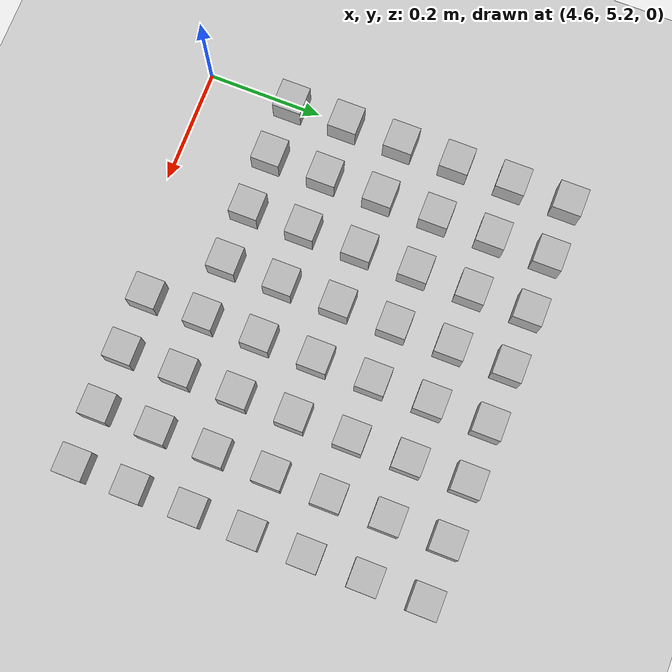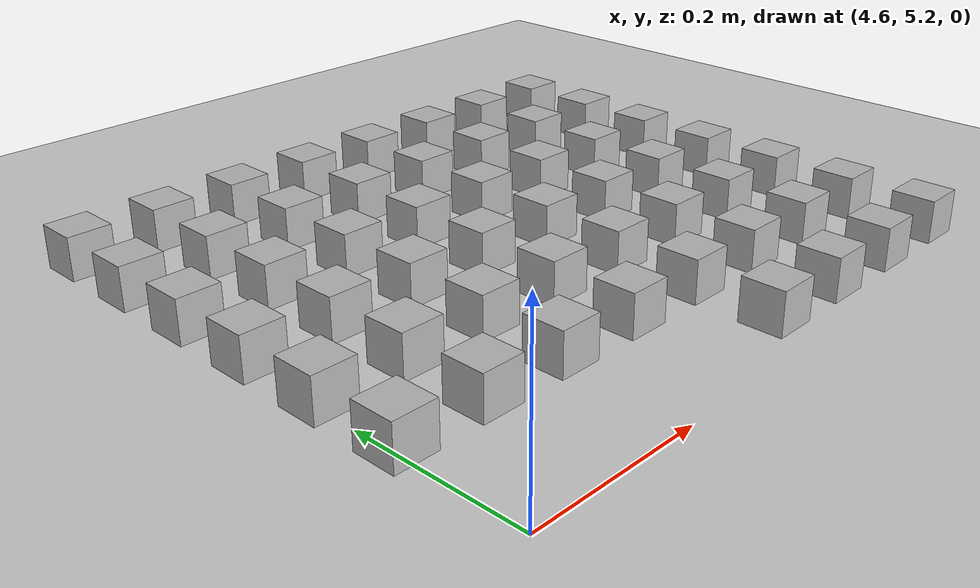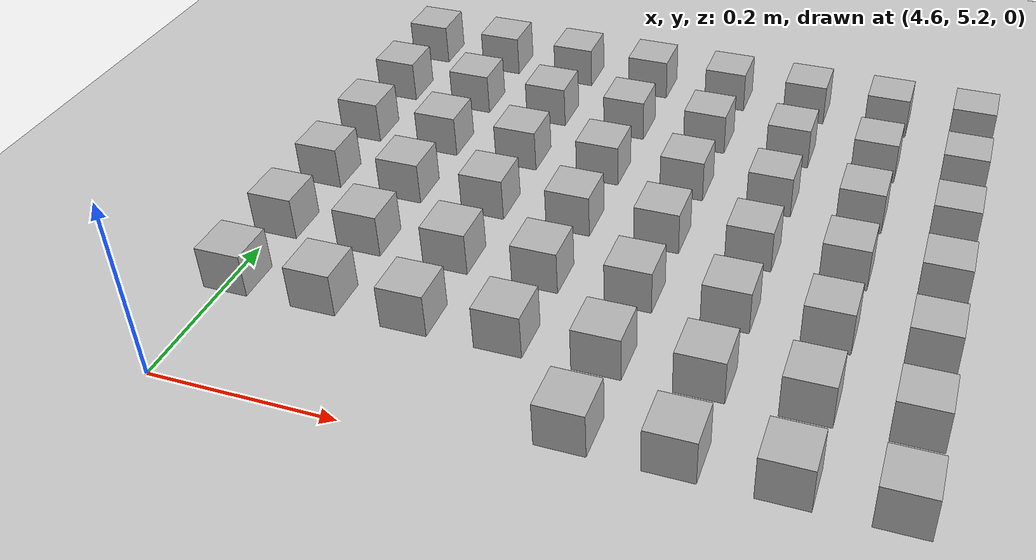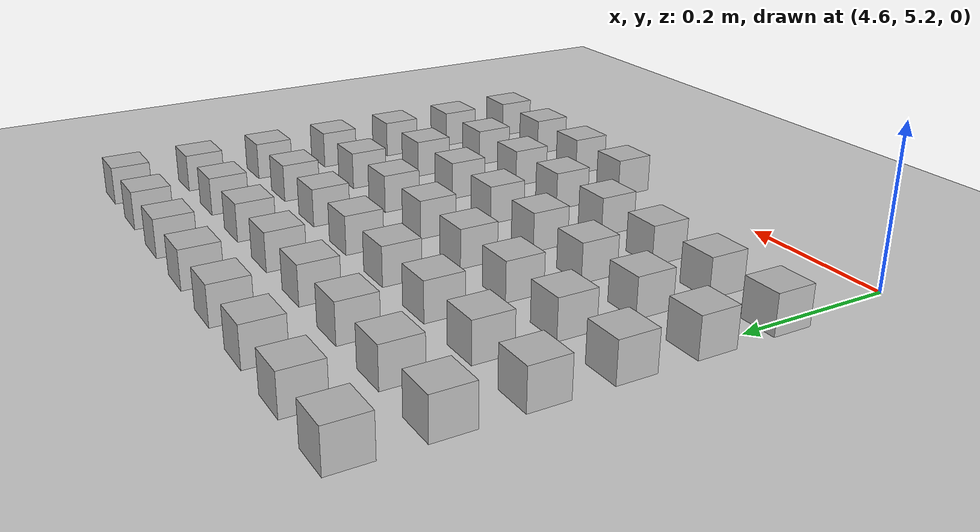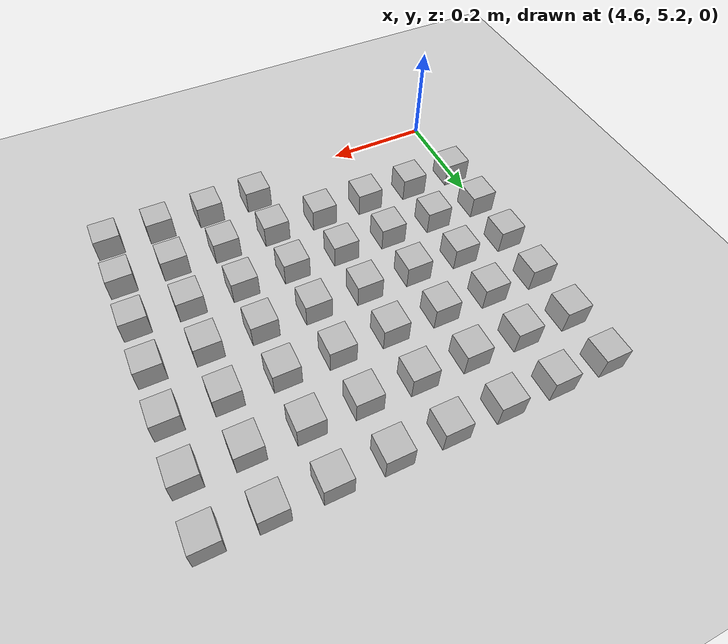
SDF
<sdf version="1.4">
 <world name="default">
  <model name="ground_plane">
   <static>1</static>
   <link name="link">
    <collision name="collision">
     <geometry><plane><normal>0 0 1</normal><size>100 100</size></plane></geometry>
     <surface><friction><ode><mu>100</mu><mu2>50</mu2></ode></friction></surface>
    </collision>
    <visual name="visual">
     <cast_shadows>0</cast_shadows>
     <geometry><plane><normal>0 0 1</normal><size>100 100</size></plane></geometry>
     <material>
      <script><uri>file://media/materials/scripts/gazebo.material</uri><name>Gazebo/Grey</name></script>
     </material>
    </visual>
    <velocity_decay><linear>0</linear><angular>0</angular></velocity_decay>
   </link>
  </model>
  <model name="at204">
   <static>0</static>
   <link name="link">
    <inertial>
     <mass>0.01</mass>
     <inertia><ixx>4e-05</ixx><ixy>0</ixy><ixz>0</ixz><iyy>4e-05</iyy><iyz>0</iyz><izz>4e-05</izz></inertia>
    </inertial>
    <visual name="visual">
     <geometry><box><size>0.05 0.05 0.05</size></box></geometry>
     <material>
      <script>
       <uri>model://at0/materials/scripts</uri>
       <uri>model://at0/materials/textures</uri>
       <name>at0/Diffuse</name>
      </script>
     </material>
    </visual>
    <collision name="collision">
     <geometry><box><size>0.05 0.05 0.05</size></box></geometry>
     <surface><friction><ode><mu>0.8</mu><mu2>0.7</mu2></ode></friction></surface>
    </collision>
    <velocity_decay><linear>0</linear><angular>0</angular></velocity_decay>
   </link>
   <pose>5.00427 5.25171 0.025 0 -0 0</pose>
  </model>
  <model name="at205">
   <static>0</static>
   <link name="link">
    <inertial>
     <mass>0.01</mass>
     <inertia><ixx>4e-05</ixx><ixy>0</ixy><ixz>0</ixz><iyy>4e-05</iyy><iyz>0</iyz><izz>4e-05</izz></inertia>
    </inertial>
    <visual name="visual">
     <geometry><box><size>0.05 0.05 0.05</size></box></geometry>
     <material>
      <script>
       <uri>model://at0/materials/scripts</uri>
       <uri>model://at0/materials/textures</uri>
       <name>at0/Diffuse</name>
      </script>
     </material>
    </visual>
    <collision name="collision">
     <geometry><box><size>0.05 0.05 0.05</size></box></geometry>
     <surface><friction><ode><mu>0.8</mu><mu2>0.7</mu2></ode></friction></surface>
    </collision>
    <velocity_decay><linear>0</linear><angular>0</angular></velocity_decay>
   </link>
   <pose>5.10427 5.25171 0.025 0 -0 0</pose>
  </model>
  <model name="at206">
   <static>0</static>
   <link name="link">
    <inertial>
     <mass>0.01</mass>
     <inertia><ixx>4e-05</ixx><ixy>0</ixy><ixz>0</ixz><iyy>4e-05</iyy><iyz>0</iyz><izz>4e-05</izz></inertia>
    </inertial>
    <visual name="visual">
     <geometry><box><size>0.05 0.05 0.05</size></box></geometry>
     <material>
      <script>
       <uri>model://at0/materials/scripts</uri>
       <uri>model://at0/materials/textures</uri>
       <name>at0/Diffuse</name>
      </script>
     </material>
    </visual>
    <collision name="collision">
     <geometry><box><size>0.05 0.05 0.05</size></box></geometry>
     <surface><friction><ode><mu>0.8</mu><mu2>0.7</mu2></ode></friction></surface>
    </collision>
    <velocity_decay><linear>0</linear><angular>0</angular></velocity_decay>
   </link>
   <pose>5.20427 5.25171 0.025 0 -0 0</pose>
  </model>
  <model name="at207">
   <static>0</static>
   <link name="link">
    <inertial>
     <mass>0.01</mass>
     <inertia><ixx>4e-05</ixx><ixy>0</ixy><ixz>0</ixz><iyy>4e-05</iyy><iyz>0</iyz><izz>4e-05</izz></inertia>
    </inertial>
    <visual name="visual">
     <geometry><box><size>0.05 0.05 0.05</size></box></geometry>
     <material>
      <script>
       <uri>model://at0/materials/scripts</uri>
       <uri>model://at0/materials/textures</uri>
       <name>at0/Diffuse</name>
      </script>
     </material>
    </visual>
    <collision name="collision">
     <geometry><box><size>0.05 0.05 0.05</size></box></geometry>
     <surface><friction><ode><mu>0.8</mu><mu2>0.7</mu2></ode></friction></surface>
    </collision>
    <velocity_decay><linear>0</linear><angular>0</angular></velocity_decay>
   </link>
   <pose>5.30427 5.25171 0.025 0 -0 0</pose>
  </model>
  <model name="at208">
   <static>0</static>
   <link name="link">
    <inertial>
     <mass>0.01</mass>
     <inertia><ixx>4e-05</ixx><ixy>0</ixy><ixz>0</ixz><iyy>4e-05</iyy><iyz>0</iyz><izz>4e-05</izz></inertia>
    </inertial>
    <visual name="visual">
     <geometry><box><size>0.05 0.05 0.05</size></box></geometry>
     <material>
      <script>
       <uri>model://at0/materials/scripts</uri>
       <uri>model://at0/materials/textures</uri>
       <name>at0/Diffuse</name>
      </script>
     </material>
    </visual>
    <collision name="collision">
     <geometry><box><size>0.05 0.05 0.05</size></box></geometry>
     <surface><friction><ode><mu>0.8</mu><mu2>0.7</mu2></ode></friction></surface>
    </collision>
    <velocity_decay><linear>0</linear><angular>0</angular></velocity_decay>
   </link>
   <pose>4.60428 5.35171 0.025 0 -0 0</pose>
  </model>
  <model name="at209">
   <static>0</static>
   <link name="link">
    <inertial>
     <mass>0.01</mass>
     <inertia><ixx>4e-05</ixx><ixy>0</ixy><ixz>0</ixz><iyy>4e-05</iyy><iyz>0</iyz><izz>4e-05</izz></inertia>
    </inertial>
    <visual name="visual">
     <geometry><box><size>0.05 0.05 0.05</size></box></geometry>
     <material>
      <script>
       <uri>model://at0/materials/scripts</uri>
       <uri>model://at0/materials/textures</uri>
       <name>at0/Diffuse</name>
      </script>
     </material>
    </visual>
    <collision name="collision">
     <geometry><box><size>0.05 0.05 0.05</size></box></geometry>
     <surface><friction><ode><mu>0.8</mu><mu2>0.7</mu2></ode></friction></surface>
    </collision>
    <velocity_decay><linear>0</linear><angular>0</angular></velocity_decay>
   </link>
   <pose>4.70428 5.35171 0.025 0 -0 0</pose>
  </model>
  <model name="at210">
   <static>0</static>
   <link name="link">
    <inertial>
     <mass>0.01</mass>
     <inertia><ixx>4e-05</ixx><ixy>0</ixy><ixz>0</ixz><iyy>4e-05</iyy><iyz>0</iyz><izz>4e-05</izz></inertia>
    </inertial>
    <visual name="visual">
     <geometry><box><size>0.05 0.05 0.05</size></box></geometry>
     <material>
      <script>
       <uri>model://at0/materials/scripts</uri>
       <uri>model://at0/materials/textures</uri>
       <name>at0/Diffuse</name>
      </script>
     </material>
    </visual>
    <collision name="collision">
     <geometry><box><size>0.05 0.05 0.05</size></box></geometry>
     <surface><friction><ode><mu>0.8</mu><mu2>0.7</mu2></ode></friction></surface>
    </collision>
    <velocity_decay><linear>0</linear><angular>0</angular></velocity_decay>
   </link>
   <pose>4.80428 5.35171 0.025 0 -0 0</pose>
  </model>
  <model name="at211">
   <static>0</static>
   <link name="link">
    <inertial>
     <mass>0.01</mass>
     <inertia><ixx>4e-05</ixx><ixy>0</ixy><ixz>0</ixz><iyy>4e-05</iyy><iyz>0</iyz><izz>4e-05</izz></inertia>
    </inertial>
    <visual name="visual">
     <geometry><box><size>0.05 0.05 0.05</size></box></geometry>
     <material>
      <script>
       <uri>model://at0/materials/scripts</uri>
       <uri>model://at0/materials/textures</uri>
       <name>at0/Diffuse</name>
      </script>
     </material>
    </visual>
    <collision name="collision">
     <geometry><box><size>0.05 0.05 0.05</size></box></geometry>
     <surface><friction><ode><mu>0.8</mu><mu2>0.7</mu2></ode></friction></surface>
    </collision>
    <velocity_decay><linear>0</linear><angular>0</angular></velocity_decay>
   </link>
   <pose>4.90427 5.35171 0.025 0 -0 0</pose>
  </model>
  <model name="at212">
   <static>0</static>
   <link name="link">
    <inertial>
     <mass>0.01</mass>
     <inertia><ixx>4e-05</ixx><ixy>0</ixy><ixz>0</ixz><iyy>4e-05</iyy><iyz>0</iyz><izz>4e-05</izz></inertia>
    </inertial>
    <visual name="visual">
     <geometry><box><size>0.05 0.05 0.05</size></box></geometry>
     <material>
      <script>
       <uri>model://at0/materials/scripts</uri>
       <uri>model://at0/materials/textures</uri>
       <name>at0/Diffuse</name>
      </script>
     </material>
    </visual>
    <collision name="collision">
     <geometry><box><size>0.05 0.05 0.05</size></box></geometry>
     <surface><friction><ode><mu>0.8</mu><mu2>0.7</mu2></ode></friction></surface>
    </collision>
    <velocity_decay><linear>0</linear><angular>0</angular></velocity_decay>
   </link>
   <pose>5.00427 5.35171 0.025 0 -0 0</pose>
  </model>
  <model name="at213">
   <static>0</static>
   <link name="link">
    <inertial>
     <mass>0.01</mass>
     <inertia><ixx>4e-05</ixx><ixy>0</ixy><ixz>0</ixz><iyy>4e-05</iyy><iyz>0</iyz><izz>4e-05</izz></inertia>
    </inertial>
    <visual name="visual">
     <geometry><box><size>0.05 0.05 0.05</size></box></geometry>
     <material>
      <script>
       <uri>model://at0/materials/scripts</uri>
       <uri>model://at0/materials/textures</uri>
       <name>at0/Diffuse</name>
      </script>
     </material>
    </visual>
    <collision name="collision">
     <geometry><box><size>0.05 0.05 0.05</size></box></geometry>
     <surface><friction><ode><mu>0.8</mu><mu2>0.7</mu2></ode></friction></surface>
    </collision>
    <velocity_decay><linear>0</linear><angular>0</angular></velocity_decay>
   </link>
   <pose>5.10427 5.35171 0.025 0 -0 0</pose>
  </model>
  <model name="at214">
   <static>0</static>
   <link name="link">
    <inertial>
     <mass>0.01</mass>
     <inertia><ixx>4e-05</ixx><ixy>0</ixy><ixz>0</ixz><iyy>4e-05</iyy><iyz>0</iyz><izz>4e-05</izz></inertia>
    </inertial>
    <visual name="visual">
     <geometry><box><size>0.05 0.05 0.05</size></box></geometry>
     <material>
      <script>
       <uri>model://at0/materials/scripts</uri>
       <uri>model://at0/materials/textures</uri>
       <name>at0/Diffuse</name>
      </script>
     </material>
    </visual>
    <collision name="collision">
     <geometry><box><size>0.05 0.05 0.05</size></box></geometry>
     <surface><friction><ode><mu>0.8</mu><mu2>0.7</mu2></ode></friction></surface>
    </collision>
    <velocity_decay><linear>0</linear><angular>0</angular></velocity_decay>
   </link>
   <pose>5.20427 5.35171 0.025 0 -0 0</pose>
  </model>
  <model name="at215">
   <static>0</static>
   <link name="link">
    <inertial>
     <mass>0.01</mass>
     <inertia><ixx>4e-05</ixx><ixy>0</ixy><ixz>0</ixz><iyy>4e-05</iyy><iyz>0</iyz><izz>4e-05</izz></inertia>
    </inertial>
    <visual name="visual">
     <geometry><box><size>0.05 0.05 0.05</size></box></geometry>
     <material>
      <script>
       <uri>model://at0/materials/scripts</uri>
       <uri>model://at0/materials/textures</uri>
       <name>at0/Diffuse</name>
      </script>
     </material>
    </visual>
    <collision name="collision">
     <geometry><box><size>0.05 0.05 0.05</size></box></geometry>
     <surface><friction><ode><mu>0.8</mu><mu2>0.7</mu2></ode></friction></surface>
    </collision>
    <velocity_decay><linear>0</linear><angular>0</angular></velocity_decay>
   </link>
   <pose>5.30427 5.35171 0.025 0 -0 0</pose>
  </model>
  <model name="at216">
   <static>0</static>
   <link name="link">
    <inertial>
     <mass>0.01</mass>
     <inertia><ixx>4e-05</ixx><ixy>0</ixy><ixz>0</ixz><iyy>4e-05</iyy><iyz>0</iyz><izz>4e-05</izz></inertia>
    </inertial>
    <visual name="visual">
     <geometry><box><size>0.05 0.05 0.05</size></box></geometry>
     <material>
      <script>
       <uri>model://at0/materials/scripts</uri>
       <uri>model://at0/materials/textures</uri>
       <name>at0/Diffuse</name>
      </script>
     </material>
    </visual>
    <collision name="collision">
     <geometry><box><size>0.05 0.05 0.05</size></box></geometry>
     <surface><friction><ode><mu>0.8</mu><mu2>0.7</mu2></ode></friction></surface>
    </collision>
    <velocity_decay><linear>0</linear><angular>0</angular></velocity_decay>
   </link>
   <pose>4.60428 5.45171 0.025 0 -0 0</pose>
  </model>
  <model name="at217">
   <static>0</static>
   <link name="link">
    <inertial>
     <mass>0.01</mass>
     <inertia><ixx>4e-05</ixx><ixy>0</ixy><ixz>0</ixz><iyy>4e-05</iyy><iyz>0</iyz><izz>4e-05</izz></inertia>
    </inertial>
    <visual name="visual">
     <geometry><box><size>0.05 0.05 0.05</size></box></geometry>
     <material>
      <script>
       <uri>model://at0/materials/scripts</uri>
       <uri>model://at0/materials/textures</uri>
       <name>at0/Diffuse</name>
      </script>
     </material>
    </visual>
    <collision name="collision">
     <geometry><box><size>0.05 0.05 0.05</size></box></geometry>
     <surface><friction><ode><mu>0.8</mu><mu2>0.7</mu2></ode></friction></surface>
    </collision>
    <velocity_decay><linear>0</linear><angular>0</angular></velocity_decay>
   </link>
   <pose>4.70428 5.45171 0.025 0 -0 0</pose>
  </model>
  <model name="at218">
   <static>0</static>
   <link name="link">
    <inertial>
     <mass>0.01</mass>
     <inertia><ixx>4e-05</ixx><ixy>0</ixy><ixz>0</ixz><iyy>4e-05</iyy><iyz>0</iyz><izz>4e-05</izz></inertia>
    </inertial>
    <visual name="visual">
     <geometry><box><size>0.05 0.05 0.05</size></box></geometry>
     <material>
      <script>
       <uri>model://at0/materials/scripts</uri>
       <uri>model://at0/materials/textures</uri>
       <name>at0/Diffuse</name>
      </script>
     </material>
    </visual>
    <collision name="collision">
     <geometry><box><size>0.05 0.05 0.05</size></box></geometry>
     <surface><friction><ode><mu>0.8</mu><mu2>0.7</mu2></ode></friction></surface>
    </collision>
    <velocity_decay><linear>0</linear><angular>0</angular></velocity_decay>
   </link>
   <pose>4.80428 5.45171 0.025 0 -0 0</pose>
  </model>
  <model name="at219">
   <static>0</static>
   <link name="link">
    <inertial>
     <mass>0.01</mass>
     <inertia><ixx>4e-05</ixx><ixy>0</ixy><ixz>0</ixz><iyy>4e-05</iyy><iyz>0</iyz><izz>4e-05</izz></inertia>
    </inertial>
    <visual name="visual">
     <geometry><box><size>0.05 0.05 0.05</size></box></geometry>
     <material>
      <script>
       <uri>model://at0/materials/scripts</uri>
       <uri>model://at0/materials/textures</uri>
       <name>at0/Diffuse</name>
      </script>
     </material>
    </visual>
    <collision name="collision">
     <geometry><box><size>0.05 0.05 0.05</size></box></geometry>
     <surface><friction><ode><mu>0.8</mu><mu2>0.7</mu2></ode></friction></surface>
    </collision>
    <velocity_decay><linear>0</linear><angular>0</angular></velocity_decay>
   </link>
   <pose>4.90427 5.45171 0.025 0 -0 0</pose>
  </model>
  <model name="at220">
   <static>0</static>
   <link name="link">
    <inertial>
     <mass>0.01</mass>
     <inertia><ixx>4e-05</ixx><ixy>0</ixy><ixz>0</ixz><iyy>4e-05</iyy><iyz>0</iyz><izz>4e-05</izz></inertia>
    </inertial>
    <visual name="visual">
     <geometry><box><size>0.05 0.05 0.05</size></box></geometry>
     <material>
      <script>
       <uri>model://at0/materials/scripts</uri>
       <uri>model://at0/materials/textures</uri>
       <name>at0/Diffuse</name>
      </script>
     </material>
    </visual>
    <collision name="collision">
     <geometry><box><size>0.05 0.05 0.05</size></box></geometry>
     <surface><friction><ode><mu>0.8</mu><mu2>0.7</mu2></ode></friction></surface>
    </collision>
    <velocity_decay><linear>0</linear><angular>0</angular></velocity_decay>
   </link>
   <pose>5.00427 5.45171 0.025 0 -0 0</pose>
  </model>
  <model name="at221">
   <static>0</static>
   <link name="link">
    <inertial>
     <mass>0.01</mass>
     <inertia><ixx>4e-05</ixx><ixy>0</ixy><ixz>0</ixz><iyy>4e-05</iyy><iyz>0</iyz><izz>4e-05</izz></inertia>
    </inertial>
    <visual name="visual">
     <geometry><box><size>0.05 0.05 0.05</size></box></geometry>
     <material>
      <script>
       <uri>model://at0/materials/scripts</uri>
       <uri>model://at0/materials/textures</uri>
       <name>at0/Diffuse</name>
      </script>
     </material>
    </visual>
    <collision name="collision">
     <geometry><box><size>0.05 0.05 0.05</size></box></geometry>
     <surface><friction><ode><mu>0.8</mu><mu2>0.7</mu2></ode></friction></surface>
    </collision>
    <velocity_decay><linear>0</linear><angular>0</angular></velocity_decay>
   </link>
   <pose>5.10427 5.45171 0.025 0 -0 0</pose>
  </model>
  <model name="at222">
   <static>0</static>
   <link name="link">
    <inertial>
     <mass>0.01</mass>
     <inertia><ixx>4e-05</ixx><ixy>0</ixy><ixz>0</ixz><iyy>4e-05</iyy><iyz>0</iyz><izz>4e-05</izz></inertia>
    </inertial>
    <visual name="visual">
     <geometry><box><size>0.05 0.05 0.05</size></box></geometry>
     <material>
      <script>
       <uri>model://at0/materials/scripts</uri>
       <uri>model://at0/materials/textures</uri>
       <name>at0/Diffuse</name>
      </script>
     </material>
    </visual>
    <collision name="collision">
     <geometry><box><size>0.05 0.05 0.05</size></box></geometry>
     <surface><friction><ode><mu>0.8</mu><mu2>0.7</mu2></ode></friction></surface>
    </collision>
    <velocity_decay><linear>0</linear><angular>0</angular></velocity_decay>
   </link>
   <pose>5.20427 5.45171 0.025 0 -0 0</pose>
  </model>
  <model name="at223">
   <static>0</static>
   <link name="link">
    <inertial>
     <mass>0.01</mass>
     <inertia><ixx>4e-05</ixx><ixy>0</ixy><ixz>0</ixz><iyy>4e-05</iyy><iyz>0</iyz><izz>4e-05</izz></inertia>
    </inertial>
    <visual name="visual">
     <geometry><box><size>0.05 0.05 0.05</size></box></geometry>
     <material>
      <script>
       <uri>model://at0/materials/scripts</uri>
       <uri>model://at0/materials/textures</uri>
       <name>at0/Diffuse</name>
      </script>
     </material>
    </visual>
    <collision name="collision">
     <geometry><box><size>0.05 0.05 0.05</size></box></geometry>
     <surface><friction><ode><mu>0.8</mu><mu2>0.7</mu2></ode></friction></surface>
    </collision>
    <velocity_decay><linear>0</linear><angular>0</angular></velocity_decay>
   </link>
   <pose>5.30427 5.45171 0.025 0 -0 0</pose>
  </model>
  <model name="at224">
   <static>0</static>
   <link name="link">
    <inertial>
     <mass>0.01</mass>
     <inertia><ixx>4e-05</ixx><ixy>0</ixy><ixz>0</ixz><iyy>4e-05</iyy><iyz>0</iyz><izz>4e-05</izz></inertia>
    </inertial>
    <visual name="visual">
     <geometry><box><size>0.05 0.05 0.05</size></box></geometry>
     <material>
      <script>
       <uri>model://at0/materials/scripts</uri>
       <uri>model://at0/materials/textures</uri>
       <name>at0/Diffuse</name>
      </script>
     </material>
    </visual>
    <collision name="collision">
     <geometry><box><size>0.05 0.05 0.05</size></box></geometry>
     <surface><friction><ode><mu>0.8</mu><mu2>0.7</mu2></ode></friction></surface>
    </collision>
    <velocity_decay><linear>0</linear><angular>0</angular></velocity_decay>
   </link>
   <pose>4.60428 5.55171 0.025 0 -0 0</pose>
  </model>
  <model name="at225">
   <static>0</static>
   <link name="link">
    <inertial>
     <mass>0.01</mass>
     <inertia><ixx>4e-05</ixx><ixy>0</ixy><ixz>0</ixz><iyy>4e-05</iyy><iyz>0</iyz><izz>4e-05</izz></inertia>
    </inertial>
    <visual name="visual">
     <geometry><box><size>0.05 0.05 0.05</size></box></geometry>
     <material>
      <script>
       <uri>model://at0/materials/scripts</uri>
       <uri>model://at0/materials/textures</uri>
       <name>at0/Diffuse</name>
      </script>
     </material>
    </visual>
    <collision name="collision">
     <geometry><box><size>0.05 0.05 0.05</size></box></geometry>
     <surface><friction><ode><mu>0.8</mu><mu2>0.7</mu2></ode></friction></surface>
    </collision>
    <velocity_decay><linear>0</linear><angular>0</angular></velocity_decay>
   </link>
   <pose>4.70428 5.55171 0.025 0 -0 0</pose>
  </model>
  <model name="at226">
   <static>0</static>
   <link name="link">
    <inertial>
     <mass>0.01</mass>
     <inertia><ixx>4e-05</ixx><ixy>0</ixy><ixz>0</ixz><iyy>4e-05</iyy><iyz>0</iyz><izz>4e-05</izz></inertia>
    </inertial>
    <visual name="visual">
     <geometry><box><size>0.05 0.05 0.05</size></box></geometry>
     <material>
      <script>
       <uri>model://at0/materials/scripts</uri>
       <uri>model://at0/materials/textures</uri>
       <name>at0/Diffuse</name>
      </script>
     </material>
    </visual>
    <collision name="collision">
     <geometry><box><size>0.05 0.05 0.05</size></box></geometry>
     <surface><friction><ode><mu>0.8</mu><mu2>0.7</mu2></ode></friction></surface>
    </collision>
    <velocity_decay><linear>0</linear><angular>0</angular></velocity_decay>
   </link>
   <pose>4.80428 5.55171 0.025 0 -0 0</pose>
  </model>
  <model name="at227">
   <static>0</static>
   <link name="link">
    <inertial>
     <mass>0.01</mass>
     <inertia><ixx>4e-05</ixx><ixy>0</ixy><ixz>0</ixz><iyy>4e-05</iyy><iyz>0</iyz><izz>4e-05</izz></inertia>
    </inertial>
    <visual name="visual">
     <geometry><box><size>0.05 0.05 0.05</size></box></geometry>
     <material>
      <script>
       <uri>model://at0/materials/scripts</uri>
       <uri>model://at0/materials/textures</uri>
       <name>at0/Diffuse</name>
      </script>
     </material>
    </visual>
    <collision name="collision">
     <geometry><box><size>0.05 0.05 0.05</size></box></geometry>
     <surface><friction><ode><mu>0.8</mu><mu2>0.7</mu2></ode></friction></surface>
    </collision>
    <velocity_decay><linear>0</linear><angular>0</angular></velocity_decay>
   </link>
   <pose>4.90427 5.55171 0.025 0 -0 0</pose>
  </model>
  <model name="at228">
   <static>0</static>
   <link name="link">
    <inertial>
     <mass>0.01</mass>
     <inertia><ixx>4e-05</ixx><ixy>0</ixy><ixz>0</ixz><iyy>4e-05</iyy><iyz>0</iyz><izz>4e-05</izz></inertia>
    </inertial>
    <visual name="visual">
     <geometry><box><size>0.05 0.05 0.05</size></box></geometry>
     <material>
      <script>
       <uri>model://at0/materials/scripts</uri>
       <uri>model://at0/materials/textures</uri>
       <name>at0/Diffuse</name>
      </script>
     </material>
    </visual>
    <collision name="collision">
     <geometry><box><size>0.05 0.05 0.05</size></box></geometry>
     <surface><friction><ode><mu>0.8</mu><mu2>0.7</mu2></ode></friction></surface>
    </collision>
    <velocity_decay><linear>0</linear><angular>0</angular></velocity_decay>
   </link>
   <pose>5.00427 5.55171 0.025 0 -0 0</pose>
  </model>
  <model name="at229">
   <static>0</static>
   <link name="link">
    <inertial>
     <mass>0.01</mass>
     <inertia><ixx>4e-05</ixx><ixy>0</ixy><ixz>0</ixz><iyy>4e-05</iyy><iyz>0</iyz><izz>4e-05</izz></inertia>
    </inertial>
    <visual name="visual">
     <geometry><box><size>0.05 0.05 0.05</size></box></geometry>
     <material>
      <script>
       <uri>model://at0/materials/scripts</uri>
       <uri>model://at0/materials/textures</uri>
       <name>at0/Diffuse</name>
      </script>
     </material>
    </visual>
    <collision name="collision">
     <geometry><box><size>0.05 0.05 0.05</size></box></geometry>
     <surface><friction><ode><mu>0.8</mu><mu2>0.7</mu2></ode></friction></surface>
    </collision>
    <velocity_decay><linear>0</linear><angular>0</angular></velocity_decay>
   </link>
   <pose>5.10427 5.55171 0.025 0 -0 0</pose>
  </model>
  <model name="at230">
   <static>0</static>
   <link name="link">
    <inertial>
     <mass>0.01</mass>
     <inertia><ixx>4e-05</ixx><ixy>0</ixy><ixz>0</ixz><iyy>4e-05</iyy><iyz>0</iyz><izz>4e-05</izz></inertia>
    </inertial>
    <visual name="visual">
     <geometry><box><size>0.05 0.05 0.05</size></box></geometry>
     <material>
      <script>
       <uri>model://at0/materials/scripts</uri>
       <uri>model://at0/materials/textures</uri>
       <name>at0/Diffuse</name>
      </script>
     </material>
    </visual>
    <collision name="collision">
     <geometry><box><size>0.05 0.05 0.05</size></box></geometry>
     <surface><friction><ode><mu>0.8</mu><mu2>0.7</mu2></ode></friction></surface>
    </collision>
    <velocity_decay><linear>0</linear><angular>0</angular></velocity_decay>
   </link>
   <pose>5.20427 5.55171 0.025 0 -0 0</pose>
  </model>
  <model name="at231">
   <static>0</static>
   <link name="link">
    <inertial>
     <mass>0.01</mass>
     <inertia><ixx>4e-05</ixx><ixy>0</ixy><ixz>0</ixz><iyy>4e-05</iyy><iyz>0</iyz><izz>4e-05</izz></inertia>
    </inertial>
    <visual name="visual">
     <geometry><box><size>0.05 0.05 0.05</size></box></geometry>
     <material>
      <script>
       <uri>model://at0/materials/scripts</uri>
       <uri>model://at0/materials/textures</uri>
       <name>at0/Diffuse</name>
      </script>
     </material>
    </visual>
    <collision name="collision">
     <geometry><box><size>0.05 0.05 0.05</size></box></geometry>
     <surface><friction><ode><mu>0.8</mu><mu2>0.7</mu2></ode></friction></surface>
    </collision>
    <velocity_decay><linear>0</linear><angular>0</angular></velocity_decay>
   </link>
   <pose>5.30427 5.55171 0.025 0 -0 0</pose>
  </model>
  <model name="at232">
   <static>0</static>
   <link name="link">
    <inertial>
     <mass>0.01</mass>
     <inertia><ixx>4e-05</ixx><ixy>0</ixy><ixz>0</ixz><iyy>4e-05</iyy><iyz>0</iyz><izz>4e-05</izz></inertia>
    </inertial>
    <visual name="visual">
     <geometry><box><size>0.05 0.05 0.05</size></box></geometry>
     <material>
      <script>
       <uri>model://at0/materials/scripts</uri>
       <uri>model://at0/materials/textures</uri>
       <name>at0/Diffuse</name>
      </script>
     </material>
    </visual>
    <collision name="collision">
     <geometry><box><size>0.05 0.05 0.05</size></box></geometry>
     <surface><friction><ode><mu>0.8</mu><mu2>0.7</mu2></ode></friction></surface>
    </collision>
    <velocity_decay><linear>0</linear><angular>0</angular></velocity_decay>
   </link>
   <pose>4.60428 5.65171 0.025 0 -0 0</pose>
  </model>
  <model name="at233">
   <static>0</static>
   <link name="link">
    <inertial>
     <mass>0.01</mass>
     <inertia><ixx>4e-05</ixx><ixy>0</ixy><ixz>0</ixz><iyy>4e-05</iyy><iyz>0</iyz><izz>4e-05</izz></inertia>
    </inertial>
    <visual name="visual">
     <geometry><box><size>0.05 0.05 0.05</size></box></geometry>
     <material>
      <script>
       <uri>model://at0/materials/scripts</uri>
       <uri>model://at0/materials/textures</uri>
       <name>at0/Diffuse</name>
      </script>
     </material>
    </visual>
    <collision name="collision">
     <geometry><box><size>0.05 0.05 0.05</size></box></geometry>
     <surface><friction><ode><mu>0.8</mu><mu2>0.7</mu2></ode></friction></surface>
    </collision>
    <velocity_decay><linear>0</linear><angular>0</angular></velocity_decay>
   </link>
   <pose>4.70428 5.65171 0.025 0 -0 0</pose>
  </model>
  <model name="at234">
   <static>0</static>
   <link name="link">
    <inertial>
     <mass>0.01</mass>
     <inertia><ixx>4e-05</ixx><ixy>0</ixy><ixz>0</ixz><iyy>4e-05</iyy><iyz>0</iyz><izz>4e-05</izz></inertia>
    </inertial>
    <visual name="visual">
     <geometry><box><size>0.05 0.05 0.05</size></box></geometry>
     <material>
      <script>
       <uri>model://at0/materials/scripts</uri>
       <uri>model://at0/materials/textures</uri>
       <name>at0/Diffuse</name>
      </script>
     </material>
    </visual>
    <collision name="collision">
     <geometry><box><size>0.05 0.05 0.05</size></box></geometry>
     <surface><friction><ode><mu>0.8</mu><mu2>0.7</mu2></ode></friction></surface>
    </collision>
    <velocity_decay><linear>0</linear><angular>0</angular></velocity_decay>
   </link>
   <pose>4.80428 5.65171 0.025 0 -0 0</pose>
  </model>
  <model name="at235">
   <static>0</static>
   <link name="link">
    <inertial>
     <mass>0.01</mass>
     <inertia><ixx>4e-05</ixx><ixy>0</ixy><ixz>0</ixz><iyy>4e-05</iyy><iyz>0</iyz><izz>4e-05</izz></inertia>
    </inertial>
    <visual name="visual">
     <geometry><box><size>0.05 0.05 0.05</size></box></geometry>
     <material>
      <script>
       <uri>model://at0/materials/scripts</uri>
       <uri>model://at0/materials/textures</uri>
       <name>at0/Diffuse</name>
      </script>
     </material>
    </visual>
    <collision name="collision">
     <geometry><box><size>0.05 0.05 0.05</size></box></geometry>
     <surface><friction><ode><mu>0.8</mu><mu2>0.7</mu2></ode></friction></surface>
    </collision>
    <velocity_decay><linear>0</linear><angular>0</angular></velocity_decay>
   </link>
   <pose>4.90427 5.65171 0.025 0 -0 0</pose>
  </model>
  <model name="at236">
   <static>0</static>
   <link name="link">
    <inertial>
     <mass>0.01</mass>
     <inertia><ixx>4e-05</ixx><ixy>0</ixy><ixz>0</ixz><iyy>4e-05</iyy><iyz>0</iyz><izz>4e-05</izz></inertia>
    </inertial>
    <visual name="visual">
     <geometry><box><size>0.05 0.05 0.05</size></box></geometry>
     <material>
      <script>
       <uri>model://at0/materials/scripts</uri>
       <uri>model://at0/materials/textures</uri>
       <name>at0/Diffuse</name>
      </script>
     </material>
    </visual>
    <collision name="collision">
     <geometry><box><size>0.05 0.05 0.05</size></box></geometry>
     <surface><friction><ode><mu>0.8</mu><mu2>0.7</mu2></ode></friction></surface>
    </collision>
    <velocity_decay><linear>0</linear><angular>0</angular></velocity_decay>
   </link>
   <pose>5.00427 5.65171 0.025 0 -0 0</pose>
  </model>
  <model name="at237">
   <static>0</static>
   <link name="link">
    <inertial>
     <mass>0.01</mass>
     <inertia><ixx>4e-05</ixx><ixy>0</ixy><ixz>0</ixz><iyy>4e-05</iyy><iyz>0</iyz><izz>4e-05</izz></inertia>
    </inertial>
    <visual name="visual">
     <geometry><box><size>0.05 0.05 0.05</size></box></geometry>
     <material>
      <script>
       <uri>model://at0/materials/scripts</uri>
       <uri>model://at0/materials/textures</uri>
       <name>at0/Diffuse</name>
      </script>
     </material>
    </visual>
    <collision name="collision">
     <geometry><box><size>0.05 0.05 0.05</size></box></geometry>
     <surface><friction><ode><mu>0.8</mu><mu2>0.7</mu2></ode></friction></surface>
    </collision>
    <velocity_decay><linear>0</linear><angular>0</angular></velocity_decay>
   </link>
   <pose>5.10427 5.65171 0.025 0 -0 0</pose>
  </model>
  <model name="at238">
   <static>0</static>
   <link name="link">
    <inertial>
     <mass>0.01</mass>
     <inertia><ixx>4e-05</ixx><ixy>0</ixy><ixz>0</ixz><iyy>4e-05</iyy><iyz>0</iyz><izz>4e-05</izz></inertia>
    </inertial>
    <visual name="visual">
     <geometry><box><size>0.05 0.05 0.05</size></box></geometry>
     <material>
      <script>
       <uri>model://at0/materials/scripts</uri>
       <uri>model://at0/materials/textures</uri>
       <name>at0/Diffuse</name>
      </script>
     </material>
    </visual>
    <collision name="collision">
     <geometry><box><size>0.05 0.05 0.05</size></box></geometry>
     <surface><friction><ode><mu>0.8</mu><mu2>0.7</mu2></ode></friction></surface>
    </collision>
    <velocity_decay><linear>0</linear><angular>0</angular></velocity_decay>
   </link>
   <pose>5.20427 5.65171 0.025 0 -0 0</pose>
  </model>
  <model name="at239">
   <static>0</static>
   <link name="link">
    <inertial>
     <mass>0.01</mass>
     <inertia><ixx>4e-05</ixx><ixy>0</ixy><ixz>0</ixz><iyy>4e-05</iyy><iyz>0</iyz><izz>4e-05</izz></inertia>
    </inertial>
    <visual name="visual">
     <geometry><box><size>0.05 0.05 0.05</size></box></geometry>
     <material>
      <script>
       <uri>model://at0/materials/scripts</uri>
       <uri>model://at0/materials/textures</uri>
       <name>at0/Diffuse</name>
      </script>
     </material>
    </visual>
    <collision name="collision">
     <geometry><box><size>0.05 0.05 0.05</size></box></geometry>
     <surface><friction><ode><mu>0.8</mu><mu2>0.7</mu2></ode></friction></surface>
    </collision>
    <velocity_decay><linear>0</linear><angular>0</angular></velocity_decay>
   </link>
   <pose>5.30427 5.65171 0.025 0 -0 0</pose>
  </model>
  <model name="at240">
   <static>0</static>
   <link name="link">
    <inertial>
     <mass>0.01</mass>
     <inertia><ixx>4e-05</ixx><ixy>0</ixy><ixz>0</ixz><iyy>4e-05</iyy><iyz>0</iyz><izz>4e-05</izz></inertia>
    </inertial>
    <visual name="visual">
     <geometry><box><size>0.05 0.05 0.05</size></box></geometry>
     <material>
      <script>
       <uri>model://at0/materials/scripts</uri>
       <uri>model://at0/materials/textures</uri>
       <name>at0/Diffuse</name>
      </script>
     </material>
    </visual>
    <collision name="collision">
     <geometry><box><size>0.05 0.05 0.05</size></box></geometry>
     <surface><friction><ode><mu>0.8</mu><mu2>0.7</mu2></ode></friction></surface>
    </collision>
    <velocity_decay><linear>0</linear><angular>0</angular></velocity_decay>
   </link>
   <pose>4.60428 5.75171 0.025 0 -0 0</pose>
  </model>
  <model name="at241">
   <static>0</static>
   <link name="link">
    <inertial>
     <mass>0.01</mass>
     <inertia><ixx>4e-05</ixx><ixy>0</ixy><ixz>0</ixz><iyy>4e-05</iyy><iyz>0</iyz><izz>4e-05</izz></inertia>
    </inertial>
    <visual name="visual">
     <geometry><box><size>0.05 0.05 0.05</size></box></geometry>
     <material>
      <script>
       <uri>model://at0/materials/scripts</uri>
       <uri>model://at0/materials/textures</uri>
       <name>at0/Diffuse</name>
      </script>
     </material>
    </visual>
    <collision name="collision">
     <geometry><box><size>0.05 0.05 0.05</size></box></geometry>
     <surface><friction><ode><mu>0.8</mu><mu2>0.7</mu2></ode></friction></surface>
    </collision>
    <velocity_decay><linear>0</linear><angular>0</angular></velocity_decay>
   </link>
   <pose>4.70428 5.75171 0.025 0 -0 0</pose>
  </model>
  <model name="at242">
   <static>0</static>
   <link name="link">
    <inertial>
     <mass>0.01</mass>
     <inertia><ixx>4e-05</ixx><ixy>0</ixy><ixz>0</ixz><iyy>4e-05</iyy><iyz>0</iyz><izz>4e-05</izz></inertia>
    </inertial>
    <visual name="visual">
     <geometry><box><size>0.05 0.05 0.05</size></box></geometry>
     <material>
      <script>
       <uri>model://at0/materials/scripts</uri>
       <uri>model://at0/materials/textures</uri>
       <name>at0/Diffuse</name>
      </script>
     </material>
    </visual>
    <collision name="collision">
     <geometry><box><size>0.05 0.05 0.05</size></box></geometry>
     <surface><friction><ode><mu>0.8</mu><mu2>0.7</mu2></ode></friction></surface>
    </collision>
    <velocity_decay><linear>0</linear><angular>0</angular></velocity_decay>
   </link>
   <pose>4.80428 5.75171 0.025 0 -0 0</pose>
  </model>
  <model name="at243">
   <static>0</static>
   <link name="link">
    <inertial>
     <mass>0.01</mass>
     <inertia><ixx>4e-05</ixx><ixy>0</ixy><ixz>0</ixz><iyy>4e-05</iyy><iyz>0</iyz><izz>4e-05</izz></inertia>
    </inertial>
    <visual name="visual">
     <geometry><box><size>0.05 0.05 0.05</size></box></geometry>
     <material>
      <script>
       <uri>model://at0/materials/scripts</uri>
       <uri>model://at0/materials/textures</uri>
       <name>at0/Diffuse</name>
      </script>
     </material>
    </visual>
    <collision name="collision">
     <geometry><box><size>0.05 0.05 0.05</size></box></geometry>
     <surface><friction><ode><mu>0.8</mu><mu2>0.7</mu2></ode></friction></surface>
    </collision>
    <velocity_decay><linear>0</linear><angular>0</angular></velocity_decay>
   </link>
   <pose>4.90427 5.75171 0.025 0 -0 0</pose>
  </model>
  <model name="at244">
   <static>0</static>
   <link name="link">
    <inertial>
     <mass>0.01</mass>
     <inertia><ixx>4e-05</ixx><ixy>0</ixy><ixz>0</ixz><iyy>4e-05</iyy><iyz>0</iyz><izz>4e-05</izz></inertia>
    </inertial>
    <visual name="visual">
     <geometry><box><size>0.05 0.05 0.05</size></box></geometry>
     <material>
      <script>
       <uri>model://at0/materials/scripts</uri>
       <uri>model://at0/materials/textures</uri>
       <name>at0/Diffuse</name>
      </script>
     </material>
    </visual>
    <collision name="collision">
     <geometry><box><size>0.05 0.05 0.05</size></box></geometry>
     <surface><friction><ode><mu>0.8</mu><mu2>0.7</mu2></ode></friction></surface>
    </collision>
    <velocity_decay><linear>0</linear><angular>0</angular></velocity_decay>
   </link>
   <pose>5.00427 5.75171 0.025 0 -0 0</pose>
  </model>
  <model name="at245">
   <static>0</static>
   <link name="link">
    <inertial>
     <mass>0.01</mass>
     <inertia><ixx>4e-05</ixx><ixy>0</ixy><ixz>0</ixz><iyy>4e-05</iyy><iyz>0</iyz><izz>4e-05</izz></inertia>
    </inertial>
    <visual name="visual">
     <geometry><box><size>0.05 0.05 0.05</size></box></geometry>
     <material>
      <script>
       <uri>model://at0/materials/scripts</uri>
       <uri>model://at0/materials/textures</uri>
       <name>at0/Diffuse</name>
      </script>
     </material>
    </visual>
    <collision name="collision">
     <geometry><box><size>0.05 0.05 0.05</size></box></geometry>
     <surface><friction><ode><mu>0.8</mu><mu2>0.7</mu2></ode></friction></surface>
    </collision>
    <velocity_decay><linear>0</linear><angular>0</angular></velocity_decay>
   </link>
   <pose>5.10427 5.75171 0.025 0 -0 0</pose>
  </model>
  <model name="at246">
   <static>0</static>
   <link name="link">
    <inertial>
     <mass>0.01</mass>
     <inertia><ixx>4e-05</ixx><ixy>0</ixy><ixz>0</ixz><iyy>4e-05</iyy><iyz>0</iyz><izz>4e-05</izz></inertia>
    </inertial>
    <visual name="visual">
     <geometry><box><size>0.05 0.05 0.05</size></box></geometry>
     <material>
      <script>
       <uri>model://at0/materials/scripts</uri>
       <uri>model://at0/materials/textures</uri>
       <name>at0/Diffuse</name>
      </script>
     </material>
    </visual>
    <collision name="collision">
     <geometry><box><size>0.05 0.05 0.05</size></box></geometry>
     <surface><friction><ode><mu>0.8</mu><mu2>0.7</mu2></ode></friction></surface>
    </collision>
    <velocity_decay><linear>0</linear><angular>0</angular></velocity_decay>
   </link>
   <pose>5.20427 5.75171 0.025 0 -0 0</pose>
  </model>
  <model name="at247">
   <static>0</static>
   <link name="link">
    <inertial>
     <mass>0.01</mass>
     <inertia><ixx>4e-05</ixx><ixy>0</ixy><ixz>0</ixz><iyy>4e-05</iyy><iyz>0</iyz><izz>4e-05</izz></inertia>
    </inertial>
    <visual name="visual">
     <geometry><box><size>0.05 0.05 0.05</size></box></geometry>
     <material>
      <script>
       <uri>model://at0/materials/scripts</uri>
       <uri>model://at0/materials/textures</uri>
       <name>at0/Diffuse</name>
      </script>
     </material>
    </visual>
    <collision name="collision">
     <geometry><box><size>0.05 0.05 0.05</size></box></geometry>
     <surface><friction><ode><mu>0.8</mu><mu2>0.7</mu2></ode></friction></surface>
    </collision>
    <velocity_decay><linear>0</linear><angular>0</angular></velocity_decay>
   </link>
   <pose>5.30427 5.75171 0.025 0 -0 0</pose>
  </model>
  <model name="at248">
   <static>0</static>
   <link name="link">
    <inertial>
     <mass>0.01</mass>
     <inertia><ixx>4e-05</ixx><ixy>0</ixy><ixz>0</ixz><iyy>4e-05</iyy><iyz>0</iyz><izz>4e-05</izz></inertia>
    </inertial>
    <visual name="visual">
     <geometry><box><size>0.05 0.05 0.05</size></box></geometry>
     <material>
      <script>
       <uri>model://at0/materials/scripts</uri>
       <uri>model://at0/materials/textures</uri>
       <name>at0/Diffuse</name>
      </script>
     </material>
    </visual>
    <collision name="collision">
     <geometry><box><size>0.05 0.05 0.05</size></box></geometry>
     <surface><friction><ode><mu>0.8</mu><mu2>0.7</mu2></ode></friction></surface>
    </collision>
    <velocity_decay><linear>0</linear><angular>0</angular></velocity_decay>
   </link>
   <pose>4.60428 5.85171 0.025 0 -0 0</pose>
  </model>
  <model name="at249">
   <static>0</static>
   <link name="link">
    <inertial>
     <mass>0.01</mass>
     <inertia><ixx>4e-05</ixx><ixy>0</ixy><ixz>0</ixz><iyy>4e-05</iyy><iyz>0</iyz><izz>4e-05</izz></inertia>
    </inertial>
    <visual name="visual">
     <geometry><box><size>0.05 0.05 0.05</size></box></geometry>
     <material>
      <script>
       <uri>model://at0/materials/scripts</uri>
       <uri>model://at0/materials/textures</uri>
       <name>at0/Diffuse</name>
      </script>
     </material>
    </visual>
    <collision name="collision">
     <geometry><box><size>0.05 0.05 0.05</size></box></geometry>
     <surface><friction><ode><mu>0.8</mu><mu2>0.7</mu2></ode></friction></surface>
    </collision>
    <velocity_decay><linear>0</linear><angular>0</angular></velocity_decay>
   </link>
   <pose>4.70428 5.85171 0.025 0 -0 0</pose>
  </model>
  <model name="at250">
   <static>0</static>
   <link name="link">
    <inertial>
     <mass>0.01</mass>
     <inertia><ixx>4e-05</ixx><ixy>0</ixy><ixz>0</ixz><iyy>4e-05</iyy><iyz>0</iyz><izz>4e-05</izz></inertia>
    </inertial>
    <visual name="visual">
     <geometry><box><size>0.05 0.05 0.05</size></box></geometry>
     <material>
      <script>
       <uri>model://at0/materials/scripts</uri>
       <uri>model://at0/materials/textures</uri>
       <name>at0/Diffuse</name>
      </script>
     </material>
    </visual>
    <collision name="collision">
     <geometry><box><size>0.05 0.05 0.05</size></box></geometry>
     <surface><friction><ode><mu>0.8</mu><mu2>0.7</mu2></ode></friction></surface>
    </collision>
    <velocity_decay><linear>0</linear><angular>0</angular></velocity_decay>
   </link>
   <pose>4.80428 5.85171 0.025 0 -0 0</pose>
  </model>
  <model name="at251">
   <static>0</static>
   <link name="link">
    <inertial>
     <mass>0.01</mass>
     <inertia><ixx>4e-05</ixx><ixy>0</ixy><ixz>0</ixz><iyy>4e-05</iyy><iyz>0</iyz><izz>4e-05</izz></inertia>
    </inertial>
    <visual name="visual">
     <geometry><box><size>0.05 0.05 0.05</size></box></geometry>
     <material>
      <script>
       <uri>model://at0/materials/scripts</uri>
       <uri>model://at0/materials/textures</uri>
       <name>at0/Diffuse</name>
      </script>
     </material>
    </visual>
    <collision name="collision">
     <geometry><box><size>0.05 0.05 0.05</size></box></geometry>
     <surface><friction><ode><mu>0.8</mu><mu2>0.7</mu2></ode></friction></surface>
    </collision>
    <velocity_decay><linear>0</linear><angular>0</angular></velocity_decay>
   </link>
   <pose>4.90427 5.85171 0.025 0 -0 0</pose>
  </model>
  <model name="at252">
   <static>0</static>
   <link name="link">
    <inertial>
     <mass>0.01</mass>
     <inertia><ixx>4e-05</ixx><ixy>0</ixy><ixz>0</ixz><iyy>4e-05</iyy><iyz>0</iyz><izz>4e-05</izz></inertia>
    </inertial>
    <visual name="visual">
     <geometry><box><size>0.05 0.05 0.05</size></box></geometry>
     <material>
      <script>
       <uri>model://at0/materials/scripts</uri>
       <uri>model://at0/materials/textures</uri>
       <name>at0/Diffuse</name>
      </script>
     </material>
    </visual>
    <collision name="collision">
     <geometry><box><size>0.05 0.05 0.05</size></box></geometry>
     <surface><friction><ode><mu>0.8</mu><mu2>0.7</mu2></ode></friction></surface>
    </collision>
    <velocity_decay><linear>0</linear><angular>0</angular></velocity_decay>
   </link>
   <pose>5.00427 5.85171 0.025 0 -0 0</pose>
  </model>
  <model name="at253">
   <static>0</static>
   <link name="link">
    <inertial>
     <mass>0.01</mass>
     <inertia><ixx>4e-05</ixx><ixy>0</ixy><ixz>0</ixz><iyy>4e-05</iyy><iyz>0</iyz><izz>4e-05</izz></inertia>
    </inertial>
    <visual name="visual">
     <geometry><box><size>0.05 0.05 0.05</size></box></geometry>
     <material>
      <script>
       <uri>model://at0/materials/scripts</uri>
       <uri>model://at0/materials/textures</uri>
       <name>at0/Diffuse</name>
      </script>
     </material>
    </visual>
    <collision name="collision">
     <geometry><box><size>0.05 0.05 0.05</size></box></geometry>
     <surface><friction><ode><mu>0.8</mu><mu2>0.7</mu2></ode></friction></surface>
    </collision>
    <velocity_decay><linear>0</linear><angular>0</angular></velocity_decay>
   </link>
   <pose>5.10427 5.85171 0.025 0 -0 0</pose>
  </model>
  <model name="at254">
   <static>0</static>
   <link name="link">
    <inertial>
     <mass>0.01</mass>
     <inertia><ixx>4e-05</ixx><ixy>0</ixy><ixz>0</ixz><iyy>4e-05</iyy><iyz>0</iyz><izz>4e-05</izz></inertia>
    </inertial>
    <visual name="visual">
     <geometry><box><size>0.05 0.05 0.05</size></box></geometry>
     <material>
      <script>
       <uri>model://at0/materials/scripts</uri>
       <uri>model://at0/materials/textures</uri>
       <name>at0/Diffuse</name>
      </script>
     </material>
    </visual>
    <collision name="collision">
     <geometry><box><size>0.05 0.05 0.05</size></box></geometry>
     <surface><friction><ode><mu>0.8</mu><mu2>0.7</mu2></ode></friction></surface>
    </collision>
    <velocity_decay><linear>0</linear><angular>0</angular></velocity_decay>
   </link>
   <pose>5.20427 5.85171 0.025 0 -0 0</pose>
  </model>
  <model name="at255">
   <static>0</static>
   <link name="link">
    <inertial>
     <mass>0.01</mass>
     <inertia><ixx>4e-05</ixx><ixy>0</ixy><ixz>0</ixz><iyy>4e-05</iyy><iyz>0</iyz><izz>4e-05</izz></inertia>
    </inertial>
    <visual name="visual">
     <geometry><box><size>0.05 0.05 0.05</size></box></geometry>
     <material>
      <script>
       <uri>model://at0/materials/scripts</uri>
       <uri>model://at0/materials/textures</uri>
       <name>at0/Diffuse</name>
      </script>
     </material>
    </visual>
    <collision name="collision">
     <geometry><box><size>0.05 0.05 0.05</size></box></geometry>
     <surface><friction><ode><mu>0.8</mu><mu2>0.7</mu2></ode></friction></surface>
    </collision>
    <velocity_decay><linear>0</linear><angular>0</angular></velocity_decay>
   </link>
   <pose>5.30427 5.85171 0.025 0 -0 0</pose>
  </model>
 </world>
</sdf>
